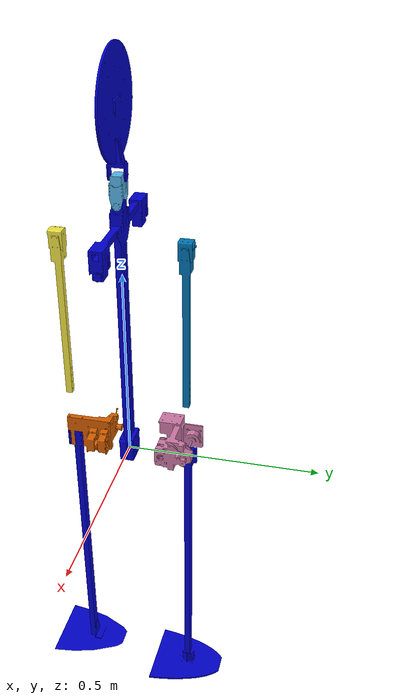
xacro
<?xml version="1.0" ?>
<!-- Marcheur passif -->
<!-- This file comes from Aldebaran romeo.urdf file with slight modifications:               -->
<!--             - rename joint_base by waist (joint base name in sot is already joint_base) -->
<!--             - waist joint goes from base_link to body (and not base_link)                   -->
<!--             - inverse trunkYaw joint direction (now from body to base_link)                 -->
<!-- Aldebaran file comes from                                                               -->

<robot name="robot" xmlns:xacro="http://www.ros.org/wiki/xacro">

   <material name="blue">
      <color rgba="0 0 0.8 1"/>
   </material>

  <link name="base_link">
    <inertial>
      <mass value="1.635"/>
      <inertia ixx="86e-03" ixy="-39.84e-6" ixz="3.991e-4" iyy="83e-3" iyz="-38.29e-6" izz="4e-3"/>
      <origin rpy="0 0 0" xyz="0 0 0.17346"/>
    </inertial>
    <visual>
      <geometry>
        <mesh filename="package://yoyoman01_description/meshes/BUSTE.stl" scale="0.001 0.001 0.001"/>
      </geometry>
    <origin rpy="0 0 -1.57075" xyz="0 0 0"/>
    <material name="blue"/>
    </visual>
    <collision>
      <geometry>
        <mesh filename="package://yoyoman01_description/meshes/BUSTE.stl" scale="0.001 0.001 0.001"/>
      </geometry>
    <origin rpy="0 0 -1.57075" xyz="0 0 0"/>
    </collision>
  </link>

  <joint name="Neck" type="revolute">
    <parent link="base_link"/>
    <child link="NeckLink"/>
    <origin rpy="0 0 0" xyz="0 0 0.675"/>
    <axis xyz="0 1 0"/>
    <limit effort="10.5" lower="-0.5" upper="0.5" velocity="1"/>
  </joint>
  <link name="NeckLink">
    <inertial>
      <mass value="0.061"/>
      <inertia ixx="2.95e-5" ixy="-7.67e-9" ixz="-3.61e-9" iyy="2.53e-5" iyz="-3.05e-6" izz="1.09e-5"/>
      <origin rpy="0 0 0" xyz="0 0 0.03"/>
    </inertial>
    <visual>
      <geometry>
        <mesh filename="package://yoyoman01_description/meshes/COU.stl" scale="0.001 0.001 0.001"/>
      </geometry>
    <origin rpy="0 0 1.57075" xyz="0 0 0"/>
    </visual>
    <collision>
      <geometry>
        <mesh filename="package://yoyoman01_description/meshes/COU.stl" scale="0.001 0.001 0.001"/>
      </geometry>
    <origin rpy="0 0 1.57075" xyz="0 0 0"/>
    </collision>
  </link>

 <joint name="Head" type="revolute">
    <parent link="NeckLink"/>
    <child link="HeadLink"/>
    <origin rpy="0 0 0" xyz="0 0 0.064502"/>
    <axis xyz="0 1 0"/>
    <limit effort="10.5" lower="-0.5" upper="0.5" velocity="1"/>
  </joint>
  <link name="HeadLink">
    <inertial>
      <mass value="0.340"/>
      <inertia ixx="2e-3" ixy="-129.7e-9" ixz="5.391e-5" iyy="3e-3" iyz="-267.9e-9" izz="1e-3"/>
      <origin rpy="0 0 0" xyz="0 0 0.143385"/>
    </inertial>
    <visual>
      <geometry>
        <mesh filename="package://yoyoman01_description/meshes/TETE.stl" scale="0.001 0.001 0.001"/>
      </geometry>
    <origin rpy="0 0 1.57075 " xyz="0 0 0"/>
    <material name="blue"/>
    </visual>
    <collision>
      <geometry>
        <mesh filename="package://yoyoman01_description/meshes/TETE.stl" scale="0.001 0.001 0.001"/>
      </geometry>
    <origin rpy="0 0 1.57075 " xyz="0 0 0"/>
    </collision>
  </link>

<joint name="Rarm" type="revolute">
    <parent link="base_link"/>
    <child link="RArmLink"/>
    <origin rpy="0 0 0" xyz="0 -0.155 0.589901 "/>
    <axis xyz="0 1 0"/>
    <limit effort="50" lower="-3" upper="3" velocity="10"/>
  </joint>
<link name="RArmLink">
    <inertial>
      <mass value="0.172"/>
      <inertia ixx="3e-3" ixy="-2.011e-20" ixz="-3.61e-9" iyy="3e-3" iyz="3.05e-6" izz="2.475e-5"/>
      <origin rpy="0 0 0 " xyz="0 0 -0.10032"/>
    </inertial>
    <visual>
      <geometry>
        <mesh filename="package://yoyoman01_description/meshes/BRAS.stl" scale="0.001 0.001 0.001"/>
      </geometry>
    <origin rpy="0 0 -1.57075" xyz="0 0 0"/>
    </visual>
    <collision>
      <geometry>
        <mesh filename="package://yoyoman01_description/meshes/BRAS.stl" scale="0.001 0.001 0.001"/>
      </geometry>
    <origin rpy="0 0 -1.57075" xyz="0 0 0"/>
    </collision>
  </link>

<joint name="Larm" type="revolute">
    <parent link="base_link"/>
    <child link="LArmLink"/>
    <origin rpy="0 0 0" xyz="0 0.155 0.589901 "/>
    <axis xyz="0 1 0"/>
    <limit effort="50" lower="-3" upper="3" velocity="10"/>
  </joint>
<link name="LArmLink">
    <inertial>
      <mass value="0.172"/>
      <inertia ixx="3e-3" ixy="2.011e-20" ixz="-3.61e-9" iyy="3e-3" iyz="-3.05e-6" izz="2.475e-5"/>
      <origin rpy="0 0 0 " xyz="0 0 -0.10032"/>
    </inertial>
    <visual>
      <geometry>
        <mesh filename="package://yoyoman01_description/meshes/BRAS.stl" scale="0.001 0.001 0.001"/>
      </geometry>
    <origin rpy="0 0 1.57075" xyz="0 0 0"/>
    </visual>
    <collision>
      <geometry>
        <mesh filename="package://yoyoman01_description/meshes/BRAS.stl" scale="0.001 0.001 0.001"/>
      </geometry>
    <origin rpy="0 0 1.57075" xyz="0 0 0"/>
    </collision>
  </link>

  <joint name="RHip" type="revolute">
    <parent link="base_link"/>
    <child link="RHipLink"/>
    <origin rpy="0 0 0" xyz="0 -0.09 0"/>
    <axis xyz="0 1 0"/>
    <limit effort="600" lower="-3" upper="3" velocity="10"/>
  </joint>
  <link name="RHipLink">
    <inertial>
      <mass value="0.816"/>
      <inertia ixx="0.001" ixy="1.921e-4" ixz="-0.0001443" iyy="0.002" iyz="1.291e-4" izz="0.002"/>
      <origin rpy="0 0 0" xyz="0.0506 -0.0137 0.0101"/>
    </inertial>
    <visual>
      <geometry>
        <mesh filename="package://yoyoman01_description/meshes/HANCHE_D.stl" scale="0.001 0.001 0.001"/>
      </geometry>
    <origin rpy="0 3.14 1.57075" xyz="0 0 0"/>
    </visual>
    <collision>
      <geometry>
        <mesh filename="package://yoyoman01_description/meshes/HANCHE_D.stl" scale="0.001 0.001 0.001"/>
      </geometry>
    <origin rpy="0 3.14 1.57075" xyz="0 0 0"/>
    </collision>
  </link>

  <joint name="LHip" type="revolute">
    <parent link="base_link"/>
    <child link="LHipLink"/>
    <origin rpy="0 0 0" xyz="0 0.09 0"/>
    <axis xyz="0 1 0"/>
    <limit effort="600" lower="-3" upper="3" velocity="10"/>
  </joint>
  <link name="LHipLink">
    <inertial>
      <mass value="0.816"/>
      <inertia ixx="0.001" ixy="-1.921e-4" ixz="-0.0001443" iyy="0.002" iyz="-1.291e-4" izz="0.002"/>
      <origin rpy="0 0 0" xyz="0.0506 0.0137 0.0101"/>
    </inertial>
    <visual>
      <geometry>
        <mesh filename="package://yoyoman01_description/meshes/HANCHE_G.stl" scale="0.001 0.001 0.001"/>
      </geometry>
    <origin rpy="0 0 1.57075" xyz="0 0 0"/>
    </visual>
    <collision>
      <geometry>
        <mesh filename="package://yoyoman01_description/meshes/HANCHE_G.stl" scale="0.001 0.001 0.001"/>
      </geometry>
    <origin rpy="0 0 1.57075" xyz="0 0 0"/>
    </collision>
  </link>

  <joint name="RKnee" type="fixed">
    <parent link="RHipLink"/>
    <child link="RKneeLink"/>
    <origin rpy="0 0 0" xyz="-0.021 -0.068 -0.01"/>
    <axis xyz="0 0 0"/>
    <limit effort="50" lower="0" upper="0.04" velocity="1"/>
  </joint>
  <link name="RKneeLink">
    <inertial>
      <mass value="0.839"/>
      <inertia ixx="80e-3" ixy="17.42e-6" ixz="-154.3e-6" iyy="80e-3" iyz="-3e-3" izz="2e-3"/>
      <origin rpy="0 0 0" xyz="0.01817 -0.01317 -0.557"/>
    </inertial>
    <visual>
      <geometry>
        <mesh filename="package://yoyoman01_description/meshes/JAMBE_G.stl" scale="0.001 0.001 0.001"/>
      </geometry>
    <origin rpy="0 0 3.14" xyz="0 0 0"/>
    <material name="blue"/>
    </visual>
    <collision>
      <geometry>
        <mesh filename="package://yoyoman01_description/meshes/JAMBE_G.stl" scale="0.001 0.001 0.001"/>
      </geometry>
    <origin rpy="0 0 3.14" xyz="0 0 0"/>
    </collision>
  </link>

  <joint name="LKnee" type="fixed">
    <parent link="LHipLink"/>
    <child link="LKneeLink"/>
    <origin rpy="0 0 0" xyz="-0.021 0.068 -0.01"/>
    <axis xyz="0 0 0"/>
    <limit effort="50" lower="0" upper="0.04" velocity="1"/>
  </joint>
  <link name="LKneeLink">
    <inertial>
      <mass value="0.839"/>
      <inertia ixx="80e-3" ixy="-17.42e-6" ixz="-154.3e-6" iyy="80e-3" iyz="3e-3" izz="2e-3"/>
      <origin rpy="0 0 0" xyz="0.01817 0.01317 -0.557"/>
    </inertial>
    <visual>
      <geometry>
        <mesh filename="package://yoyoman01_description/meshes/JAMBE_D.stl" scale="0.001 0.001 0.001"/>
      </geometry>
    <origin rpy="0 0 3.14" xyz="0 0 0"/>
    <material name="blue"/>
    </visual>
    <collision>
      <geometry>
        <mesh filename="package://yoyoman01_description/meshes/JAMBE_D.stl" scale="0.001 0.001 0.001"/>
      </geometry>
    <origin rpy="0 0 3.14" xyz="0 0 0"/>
    </collision>
  </link>

<!-- **********Virtual points on the top of the foots ********** -->

  <joint name="RFoot" type="fixed">
    <parent link="RKneeLink"/>
    <child link="RFootLink"/>
    <origin rpy="0 0 0" xyz="0.0187 0 -0.7775"/>
    <axis xyz="0 0 0"/>
  </joint>
    <link name="RFootLink">
  </link>

  <joint name="LFoot" type="fixed">
    <parent link="LKneeLink"/>
    <child link="LFootLink"/>
    <origin rpy="0 0 0" xyz="0.0187 0 -0.7775"/>
    <axis xyz="0 0 0"/>
  </joint>
    <link name="LFootLink">
  </link>

<!--
**********Transmissions**********
-->

  <transmission name="tranHead">
    <type>transmission_interface/SimpleTransmission</type>
    <joint name="Head">
      <hardwareInterface>hardware_interface/PositionJointInterface</hardwareInterface>
    </joint>
    <actuator name="motorHead">
      <hardwareInterface>hardware_interface/PositionJointInterface</hardwareInterface>
      <mechanicalReduction>1</mechanicalReduction>
    </actuator>
  </transmission>

  <transmission name="tranNeck">
    <type>transmission_interface/SimpleTransmission</type>
    <joint name="Neck">
      <hardwareInterface>hardware_interface/PositionJointInterface</hardwareInterface>
    </joint>
    <actuator name="motorNeck">
      <hardwareInterface>hardware_interface/PositionJointInterface</hardwareInterface>
      <mechanicalReduction>1</mechanicalReduction>
    </actuator>
  </transmission>

  <transmission name="tranRarm">
    <type>transmission_interface/SimpleTransmission</type>
    <joint name="Rarm">
      <hardwareInterface>hardware_interface/PositionJointInterface</hardwareInterface>
    </joint>
    <actuator name="motorRarm">
      <hardwareInterface>hardware_interface/PositionJointInterface</hardwareInterface>
      <mechanicalReduction>1</mechanicalReduction>
    </actuator>
  </transmission>

  <transmission name="tranLarm">
    <type>transmission_interface/SimpleTransmission</type>
    <joint name="Larm">
      <hardwareInterface>hardware_interface/PositionJointInterface</hardwareInterface>
    </joint>
    <actuator name="motorLarm">
      <hardwareInterface>hardware_interface/PositionJointInterface</hardwareInterface>
      <mechanicalReduction>1</mechanicalReduction>
    </actuator>
  </transmission>

  <transmission name="tranRHip">
    <type>transmission_interface/SimpleTransmission</type>
    <joint name="RHip">
      <hardwareInterface>hardware_interface/PositionJointInterface</hardwareInterface>
    </joint>
    <actuator name="motorRHip">
      <hardwareInterface>hardware_interface/PositionJointInterface</hardwareInterface>
      <mechanicalReduction>1</mechanicalReduction>
    </actuator>
  </transmission>

  <transmission name="tranLHip">
    <type>transmission_interface/SimpleTransmission</type>
    <joint name="LHip">
      <hardwareInterface>hardware_interface/PositionJointInterface</hardwareInterface>
    </joint>
    <actuator name="motorLHip">
      <hardwareInterface>hardware_interface/PositionJointInterface</hardwareInterface>
      <mechanicalReduction>1</mechanicalReduction>
    </actuator>
  </transmission>
  <gazebo>
    <plugin name="gazebo_ros_control" filename="libgazebo_ros_control.so">
    </plugin>
  </gazebo>

</robot>
